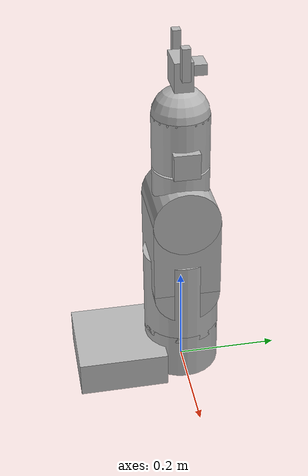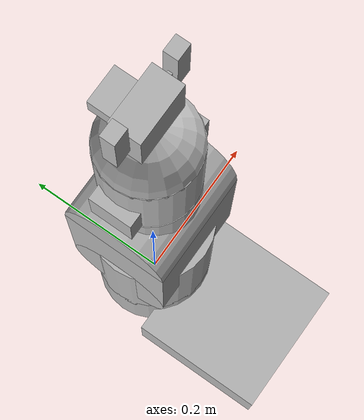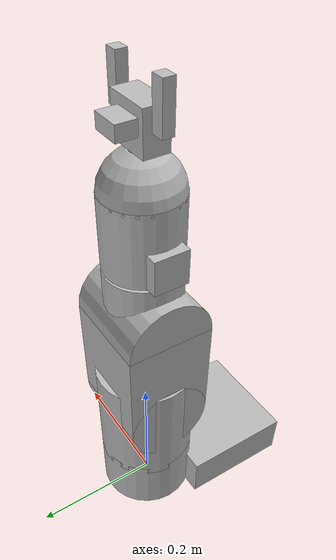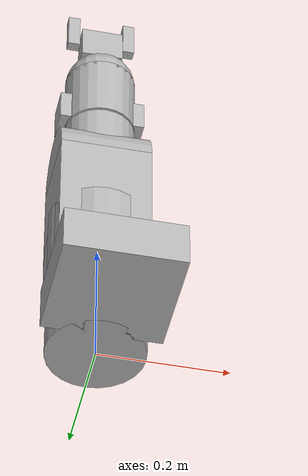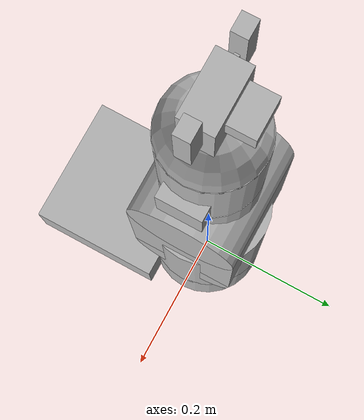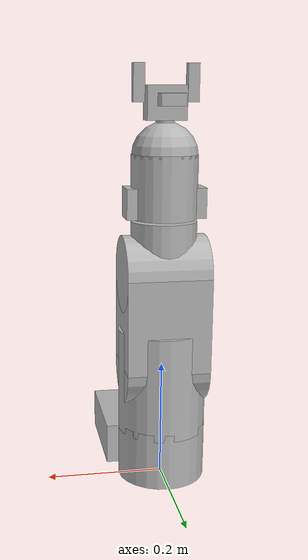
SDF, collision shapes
<sdf version='1.7'>
  <model name='thor_arm'>
    <joint name='virtual_joint' type='fixed'>
      <pose relative_to='__model__'>0 0 0 0 -0 0</pose>
      <parent>world</parent>
      <child>base_link</child>
    </joint>
    <link name='base_link'>
      <pose relative_to='virtual_joint'>0 0 0 0 -0 0</pose>
      <inertial>
        <pose>0 0 0 0 -0 0</pose>
        <mass>1</mass>
        <inertia>
          <ixx>1</ixx>
          <ixy>0</ixy>
          <ixz>0</ixz>
          <iyy>1</iyy>
          <iyz>0</iyz>
          <izz>1</izz>
        </inertia>
      </inertial>
      <collision name='base_link_collision'>
        <pose>0 0 0.049 0 0 -1.5708</pose>
        <geometry>
          <cylinder>
            <length>0.098</length>
            <radius>0.075</radius>
          </cylinder>
        </geometry>
      </collision>
      <collision name='base_link_collision_1'>
        <pose>0 -0.131269 0.03525 0 0 -1.5708</pose>
        <geometry>
          <box>
            <size>0.176 0.18 0.0705</size>
          </box>
        </geometry>
      </collision>
      <visual name='base_link_visual'>
        <pose>0 0 0 0 0 -1.5708</pose>
        <geometry>
          <mesh>
            <scale>0.001 0.001 0.001</scale>
            <uri>model://thor_urdf/meshes/Base.dae</uri>
          </mesh>
        </geometry>
      </visual>
    </link>
    <joint name='joint_1' type='revolute'>
      <pose relative_to='base_link'>0 0 0.099 0 -0 0</pose>
      <parent>base_link</parent>
      <child>link_1</child>
      <axis>
        <xyz>0 0 1</xyz>
        <limit>
          <lower>-2.967</lower>
          <upper>2.967</upper>
          <effort>4</effort>
          <velocity>1</velocity>
        </limit>
        <dynamics>
          <spring_reference>0</spring_reference>
          <spring_stiffness>0</spring_stiffness>
        </dynamics>
      </axis>
    </joint>
    <link name='link_1'>
      <pose relative_to='joint_1'>0 0 0 0 -0 0</pose>
      <inertial>
        <pose>0 0 0 0 -0 0</pose>
        <mass>1</mass>
        <inertia>
          <ixx>1</ixx>
          <ixy>0</ixy>
          <ixz>0</ixz>
          <iyy>1</iyy>
          <iyz>0</iyz>
          <izz>1</izz>
        </inertia>
      </inertial>
      <collision name='link_1_collision'>
        <pose>0 0 0.0765 0 0 -1.5708</pose>
        <geometry>
          <cylinder>
            <length>0.179</length>
            <radius>0.075</radius>
          </cylinder>
        </geometry>
      </collision>
      <visual name='link_1_visual'>
        <pose>0 0 0 0 0 -1.5708</pose>
        <geometry>
          <mesh>
            <scale>0.001 0.001 0.001</scale>
            <uri>model://thor_urdf/meshes/Art1.dae</uri>
          </mesh>
        </geometry>
      </visual>
    </link>
    <joint name='joint_2' type='revolute'>
      <pose relative_to='link_1'>0 0 0.103 0 -0 0</pose>
      <parent>link_1</parent>
      <child>link_2</child>
      <axis>
        <xyz>1 0 0</xyz>
        <limit>
          <lower>-1.5708</lower>
          <upper>1.5708</upper>
          <effort>4</effort>
          <velocity>1</velocity>
        </limit>
        <dynamics>
          <spring_reference>0</spring_reference>
          <spring_stiffness>0</spring_stiffness>
        </dynamics>
      </axis>
    </joint>
    <link name='link_2'>
      <pose relative_to='joint_2'>0 0 0 0 -0 0</pose>
      <inertial>
        <pose>0 0 0 0 -0 0</pose>
        <mass>1</mass>
        <inertia>
          <ixx>1</ixx>
          <ixy>0</ixy>
          <ixz>0</ixz>
          <iyy>1</iyy>
          <iyz>0</iyz>
          <izz>1</izz>
        </inertia>
      </inertial>
      <collision name='link_2_collision'>
        <pose>0 0 0 1.5708 -0 -1.5708</pose>
        <geometry>
          <cylinder>
            <length>0.14</length>
            <radius>0.065</radius>
          </cylinder>
        </geometry>
      </collision>
      <collision name='link_2_collision_1'>
        <pose>0 0 0.08 1.5708 -0 -1.5708</pose>
        <geometry>
          <box>
            <size>0.13 0.16 0.14</size>
          </box>
        </geometry>
      </collision>
      <collision name='link_2_collision_2'>
        <pose>0 0 0.16 1.5708 -0 -1.5708</pose>
        <geometry>
          <cylinder>
            <length>0.14</length>
            <radius>0.065</radius>
          </cylinder>
        </geometry>
      </collision>
      <visual name='link_2_visual'>
        <pose>0 0 0 0 0 -1.5708</pose>
        <geometry>
          <mesh>
            <scale>0.001 0.001 0.001</scale>
            <uri>model://thor_urdf/meshes/Art2.dae</uri>
          </mesh>
        </geometry>
      </visual>
    </link>
    <joint name='joint_3' type='revolute'>
      <pose relative_to='link_2'>0 0 0.16 0 -0 0</pose>
      <parent>link_2</parent>
      <child>link_3</child>
      <axis>
        <xyz>1 0 0</xyz>
        <limit>
          <lower>-1.5708</lower>
          <upper>1.5708</upper>
          <effort>4</effort>
          <velocity>1</velocity>
        </limit>
        <dynamics>
          <spring_reference>0</spring_reference>
          <spring_stiffness>0</spring_stiffness>
        </dynamics>
      </axis>
    </joint>
    <link name='link_3'>
      <pose relative_to='joint_3'>0 0 0 0 -0 0</pose>
      <inertial>
        <pose>0 0 0 0 -0 0</pose>
        <mass>1</mass>
        <inertia>
          <ixx>1</ixx>
          <ixy>0</ixy>
          <ixz>0</ixz>
          <iyy>1</iyy>
          <iyz>0</iyz>
          <izz>1</izz>
        </inertia>
      </inertial>
      <collision name='link_3_collision'>
        <pose>0 0 0.01225 0 0 -1.5708</pose>
        <geometry>
          <cylinder>
            <length>0.1525</length>
            <radius>0.055</radius>
          </cylinder>
        </geometry>
      </collision>
      <visual name='link_3_visual'>
        <pose>0 0 0 0 0 -1.5708</pose>
        <geometry>
          <mesh>
            <scale>0.001 0.001 0.001</scale>
            <uri>model://thor_urdf/meshes/Art3.dae</uri>
          </mesh>
        </geometry>
      </visual>
    </link>
    <joint name='joint_4' type='revolute'>
      <pose relative_to='link_3'>0 0 0.0895 0 -0 0</pose>
      <parent>link_3</parent>
      <child>link_4</child>
      <axis>
        <xyz>0 0 1</xyz>
        <limit>
          <lower>-2.967</lower>
          <upper>2.967</upper>
          <effort>4</effort>
          <velocity>1</velocity>
        </limit>
        <dynamics>
          <spring_reference>0</spring_reference>
          <spring_stiffness>0</spring_stiffness>
        </dynamics>
      </axis>
    </joint>
    <link name='link_4'>
      <pose relative_to='joint_4'>0 0 0 0 -0 0</pose>
      <inertial>
        <pose>0 0 0 0 -0 0</pose>
        <mass>1</mass>
        <inertia>
          <ixx>1</ixx>
          <ixy>0</ixy>
          <ixz>0</ixz>
          <iyy>1</iyy>
          <iyz>0</iyz>
          <izz>1</izz>
        </inertia>
      </inertial>
      <collision name='link_4_collision'>
        <pose>0 0 0.1045 0 0 -1.5708</pose>
        <geometry>
          <sphere>
            <radius>0.055</radius>
          </sphere>
        </geometry>
      </collision>
      <collision name='link_4_collision_1'>
        <pose>0 0 0.05525 0 0 -1.5708</pose>
        <geometry>
          <cylinder>
            <length>0.1045</length>
            <radius>0.055</radius>
          </cylinder>
        </geometry>
      </collision>
      <collision name='link_4_collision_2'>
        <pose>0 0 0.0295 0 0 -1.5708</pose>
        <geometry>
          <box>
            <size>0.05 0.132 0.05</size>
          </box>
        </geometry>
      </collision>
      <visual name='link_4_visual'>
        <pose>0 0 0 0 0 -1.5708</pose>
        <geometry>
          <mesh>
            <scale>0.001 0.001 0.001</scale>
            <uri>model://thor_urdf/meshes/Art4.dae</uri>
          </mesh>
        </geometry>
      </visual>
    </link>
    <joint name='joint_5' type='revolute'>
      <pose relative_to='link_4'>0 0 0.1045 0 -0 0</pose>
      <parent>link_4</parent>
      <child>link_5</child>
      <axis>
        <xyz>1 0 0</xyz>
        <limit>
          <lower>-1.5708</lower>
          <upper>1.5708</upper>
          <effort>4</effort>
          <velocity>1</velocity>
        </limit>
        <dynamics>
          <spring_reference>0</spring_reference>
          <spring_stiffness>0</spring_stiffness>
        </dynamics>
      </axis>
    </joint>
    <link name='link_5'>
      <pose relative_to='joint_5'>0 0 0 0 -0 0</pose>
      <inertial>
        <pose>0 0 0 0 -0 0</pose>
        <mass>1</mass>
        <inertia>
          <ixx>1</ixx>
          <ixy>0</ixy>
          <ixz>0</ixz>
          <iyy>1</iyy>
          <iyz>0</iyz>
          <izz>1</izz>
        </inertia>
      </inertial>
      <collision name='link_5_collision'>
        <pose>0 0 0 1.5708 -0 -1.5708</pose>
        <geometry>
          <cylinder>
            <length>0.03</length>
            <radius>0.047</radius>
          </cylinder>
        </geometry>
      </collision>
      <visual name='link_5_visual'>
        <pose>0 0 0 0 0 -1.5708</pose>
        <geometry>
          <mesh>
            <scale>0.001 0.001 0.001</scale>
            <uri>model://thor_urdf/meshes/Art5.dae</uri>
          </mesh>
        </geometry>
      </visual>
    </link>
    <joint name='joint_6' type='revolute'>
      <pose relative_to='link_5'>0 0 0.0135 0 -0 0</pose>
      <parent>link_5</parent>
      <child>link_6</child>
      <axis>
        <xyz>0 0 1</xyz>
        <limit>
          <lower>-2.967</lower>
          <upper>2.967</upper>
          <effort>4</effort>
          <velocity>1</velocity>
        </limit>
        <dynamics>
          <spring_reference>0</spring_reference>
          <spring_stiffness>0</spring_stiffness>
        </dynamics>
      </axis>
    </joint>
    <link name='link_6'>
      <pose relative_to='joint_6'>0 0 0 0 -0 0</pose>
      <inertial>
        <pose>0 0 0.0215 0 -0 0</pose>
        <mass>2</mass>
        <inertia>
          <ixx>2.00092</ixx>
          <ixy>0</ixy>
          <ixz>0</ixz>
          <iyy>2.00092</iyy>
          <iyz>0</iyz>
          <izz>2</izz>
        </inertia>
      </inertial>
      <collision name='link_6_collision'>
        <pose>0 0 0.025 0 0 -1.5708</pose>
        <geometry>
          <cylinder>
            <length>0.05</length>
            <radius>0.015</radius>
          </cylinder>
        </geometry>
      </collision>
      <collision name='link_6_fixed_joint_lump__gripper_base_collision_1'>
        <pose>0 0 0.0705 0 -0 0</pose>
        <geometry>
          <box>
            <size>0.065 0.0348 0.055</size>
          </box>
        </geometry>
      </collision>
      <collision name='link_6_fixed_joint_lump__gripper_base_collision_2'>
        <pose>-0.00425 0.03125 0.0755 0 -0 0</pose>
        <geometry>
          <box>
            <size>0.0406 0.0277 0.02</size>
          </box>
        </geometry>
      </collision>
      <visual name='link_6_visual'>
        <pose>0 0 0 0 0 -1.5708</pose>
        <geometry>
          <mesh>
            <scale>0.001 0.001 0.001</scale>
            <uri>model://thor_urdf/meshes/Art6.dae</uri>
          </mesh>
        </geometry>
      </visual>
      <visual name='link_6_fixed_joint_lump__gripper_base_visual_1'>
        <pose>0 0 0.043 0 -0 0</pose>
        <geometry>
          <mesh>
            <scale>0.001 0.001 0.001</scale>
            <uri>model://thor_urdf/meshes/GripperBase.dae</uri>
          </mesh>
        </geometry>
      </visual>
    </link>
    <joint name='gripperbase_to_armgearleft' type='revolute'>
      <pose relative_to='link_6'>-0.0145 0.00275 0.0755 0 -0 0</pose>
      <parent>link_6</parent>
      <child>gripper_arm_gear_left</child>
      <axis>
        <xyz>0 1 0</xyz>
        <limit>
          <lower>0</lower>
          <upper>1.5708</upper>
          <effort>4</effort>
          <velocity>1</velocity>
        </limit>
        <dynamics>
          <spring_reference>0</spring_reference>
          <spring_stiffness>0</spring_stiffness>
        </dynamics>
      </axis>
    </joint>
    <link name='gripper_arm_gear_left'>
      <pose relative_to='gripperbase_to_armgearleft'>0 0 0 0 -0 0</pose>
      <inertial>
        <pose>0 0 0 0 -0 0</pose>
        <mass>1</mass>
        <inertia>
          <ixx>1</ixx>
          <ixy>0</ixy>
          <ixz>0</ixz>
          <iyy>1</iyy>
          <iyz>0</iyz>
          <izz>1</izz>
        </inertia>
      </inertial>
      <collision name='gripper_arm_gear_left_collision'>
        <pose>-0.0175 -0.0025 0 0 -0 0</pose>
        <geometry>
          <box>
            <size>0.035 0.005 0.004</size>
          </box>
        </geometry>
      </collision>
      <visual name='gripper_arm_gear_left_visual'>
        <pose>0 0 0 1.5708 1.5708 0</pose>
        <geometry>
          <mesh>
            <scale>0.001 0.001 0.001</scale>
            <uri>model://thor_urdf/meshes/GripperArmGear.dae</uri>
          </mesh>
        </geometry>
      </visual>
    </link>
    <joint name='armgearleft_to_fingerleft' type='revolute'>
      <pose relative_to='gripper_arm_gear_left'>-0.035 0.005175 0 1.5708 -0 0</pose>
      <parent>gripper_arm_gear_left</parent>
      <child>gripper_finger_left</child>
      <axis>
        <xyz>0 0 1</xyz>
        <limit>
          <lower>0</lower>
          <upper>1.5708</upper>
          <effort>4</effort>
          <velocity>1</velocity>
        </limit>
        <dynamics>
          <spring_reference>0</spring_reference>
          <spring_stiffness>0</spring_stiffness>
        </dynamics>
      </axis>
    </joint>
    <link name='gripper_finger_left'>
      <pose relative_to='armgearleft_to_fingerleft'>0 0 0 0 -0 0</pose>
      <inertial>
        <pose>0 0 0 0 -0 0</pose>
        <mass>1</mass>
        <inertia>
          <ixx>1</ixx>
          <ixy>0</ixy>
          <ixz>0</ixz>
          <iyy>1</iyy>
          <iyz>0</iyz>
          <izz>1</izz>
        </inertia>
      </inertial>
      <collision name='gripper_finger_left_collision'>
        <pose>0.00525 0.026 0.00775 0 -0 0</pose>
        <geometry>
          <box>
            <size>0.0185 0.06 0.0155</size>
          </box>
        </geometry>
      </collision>
      <visual name='gripper_finger_left_visual'>
        <pose>0 0 0 0 -0 0</pose>
        <geometry>
          <mesh>
            <scale>0.001 0.001 0.001</scale>
            <uri>model://thor_urdf/meshes/GripperFinger.dae</uri>
          </mesh>
        </geometry>
      </visual>
    </link>
    <joint name='gripperbase_to_armgearright' type='revolute'>
      <pose relative_to='link_6'>0.0145 0.00275 0.0755 0 -0 0</pose>
      <parent>link_6</parent>
      <child>gripper_arm_gear_right</child>
      <axis>
        <xyz>0 1 0</xyz>
        <limit>
          <lower>-1.5708</lower>
          <upper>0</upper>
          <effort>4</effort>
          <velocity>1</velocity>
        </limit>
        <dynamics>
          <spring_reference>0</spring_reference>
          <spring_stiffness>0</spring_stiffness>
        </dynamics>
      </axis>
    </joint>
    <link name='gripper_arm_gear_right'>
      <pose relative_to='gripperbase_to_armgearright'>0 0 0 0 -0 0</pose>
      <inertial>
        <pose>0 0 0 0 -0 0</pose>
        <mass>1</mass>
        <inertia>
          <ixx>1</ixx>
          <ixy>0</ixy>
          <ixz>0</ixz>
          <iyy>1</iyy>
          <iyz>0</iyz>
          <izz>1</izz>
        </inertia>
      </inertial>
      <collision name='gripper_arm_gear_right_collision'>
        <pose>0.0175 -0.0025 0 0 -0 0</pose>
        <geometry>
          <box>
            <size>0.035 0.005 0.004</size>
          </box>
        </geometry>
      </collision>
      <visual name='gripper_arm_gear_right_visual'>
        <pose>0 0 0 1.5708 -1.5708 0</pose>
        <geometry>
          <mesh>
            <scale>0.001 0.001 0.001</scale>
            <uri>model://thor_urdf/meshes/GripperArmGear.dae</uri>
          </mesh>
        </geometry>
      </visual>
    </link>
    <joint name='armgearright_to_fingerright' type='revolute'>
      <pose relative_to='gripper_arm_gear_right'>0.035 -0.01023 0 1.5708 -0 3.14159</pose>
      <parent>gripper_arm_gear_right</parent>
      <child>gripper_finger_right</child>
      <axis>
        <xyz>0 0 1</xyz>
        <limit>
          <lower>0</lower>
          <upper>1.5708</upper>
          <effort>4</effort>
          <velocity>1</velocity>
        </limit>
        <dynamics>
          <spring_reference>0</spring_reference>
          <spring_stiffness>0</spring_stiffness>
        </dynamics>
      </axis>
    </joint>
    <link name='gripper_finger_right'>
      <pose relative_to='armgearright_to_fingerright'>0 0 0 0 -0 0</pose>
      <inertial>
        <pose>0 0 0 0 -0 0</pose>
        <mass>1</mass>
        <inertia>
          <ixx>1</ixx>
          <ixy>0</ixy>
          <ixz>0</ixz>
          <iyy>1</iyy>
          <iyz>0</iyz>
          <izz>1</izz>
        </inertia>
      </inertial>
      <collision name='gripper_finger_right_collision'>
        <pose>0.00525 0.026 0.00775 0 -0 0</pose>
        <geometry>
          <box>
            <size>0.0185 0.06 0.0155</size>
          </box>
        </geometry>
      </collision>
      <visual name='gripper_finger_right_visual'>
        <pose>0 0 0 0 -0 0</pose>
        <geometry>
          <mesh>
            <scale>0.001 0.001 0.001</scale>
            <uri>model://thor_urdf/meshes/GripperFinger.dae</uri>
          </mesh>
        </geometry>
      </visual>
    </link>
    <joint name='gripperbase_to_armsimpleleft' type='revolute'>
      <pose relative_to='link_6'>-0.006 0.00275 0.094 0 -0 0</pose>
      <parent>link_6</parent>
      <child>gripper_arm_simple_left</child>
      <axis>
        <xyz>0 1 0</xyz>
        <limit>
          <lower>0</lower>
          <upper>1.5708</upper>
          <effort>4</effort>
          <velocity>1</velocity>
        </limit>
        <dynamics>
          <spring_reference>0</spring_reference>
          <spring_stiffness>0</spring_stiffness>
        </dynamics>
      </axis>
    </joint>
    <link name='gripper_arm_simple_left'>
      <pose relative_to='gripperbase_to_armsimpleleft'>0 0 0 0 -0 0</pose>
      <inertial>
        <pose>0 0 0 0 -0 0</pose>
        <mass>1</mass>
        <inertia>
          <ixx>1</ixx>
          <ixy>0</ixy>
          <ixz>0</ixz>
          <iyy>1</iyy>
          <iyz>0</iyz>
          <izz>1</izz>
        </inertia>
      </inertial>
      <collision name='gripper_arm_simple_left_collision'>
        <pose>-0.0175 -0.0025 0 0 -0 0</pose>
        <geometry>
          <box>
            <size>0.035 0.005 0.004</size>
          </box>
        </geometry>
      </collision>
      <visual name='gripper_arm_simple_left_visual'>
        <pose>0 0 0 1.5708 1.5708 0</pose>
        <geometry>
          <mesh>
            <scale>0.001 0.001 0.001</scale>
            <uri>model://thor_urdf/meshes/GripperArm.dae</uri>
          </mesh>
        </geometry>
      </visual>
    </link>
    <joint name='gripperbase_to_armsimpleright' type='revolute'>
      <pose relative_to='link_6'>0.006 0.00275 0.094 0 -0 0</pose>
      <parent>link_6</parent>
      <child>gripper_arm_simple_right</child>
      <axis>
        <xyz>0 1 0</xyz>
        <limit>
          <lower>-1.5708</lower>
          <upper>0</upper>
          <effort>4</effort>
          <velocity>1</velocity>
        </limit>
        <dynamics>
          <spring_reference>0</spring_reference>
          <spring_stiffness>0</spring_stiffness>
        </dynamics>
      </axis>
    </joint>
    <link name='gripper_arm_simple_right'>
      <pose relative_to='gripperbase_to_armsimpleright'>0 0 0 0 -0 0</pose>
      <inertial>
        <pose>0 0 0 0 -0 0</pose>
        <mass>1</mass>
        <inertia>
          <ixx>1</ixx>
          <ixy>0</ixy>
          <ixz>0</ixz>
          <iyy>1</iyy>
          <iyz>0</iyz>
          <izz>1</izz>
        </inertia>
      </inertial>
      <collision name='gripper_arm_simple_right_collision'>
        <pose>0.0175 -0.0025 0 0 -0 0</pose>
        <geometry>
          <box>
            <size>0.035 0.005 0.004</size>
          </box>
        </geometry>
      </collision>
      <visual name='gripper_arm_simple_right_visual'>
        <pose>0 0 0 1.5708 -1.5708 0</pose>
        <geometry>
          <mesh>
            <scale>0.001 0.001 0.001</scale>
            <uri>model://thor_urdf/meshes/GripperArm.dae</uri>
          </mesh>
        </geometry>
      </visual>
    </link>
    <static>0</static>
    <plugin name='gazebo_ros2_control' filename='libgazebo_ros2_control.so'>
      <robot_param>robot_description</robot_param>
      <robot_param_node>robot_state_publisher</robot_param_node>
      <parameters>/home/daopctn/Projects/Thor-ROS/ws_thor/install/thor_controller/share/thor_controller/config/thor_controllers.yaml</parameters>
    </plugin>
  </model>
</sdf>
